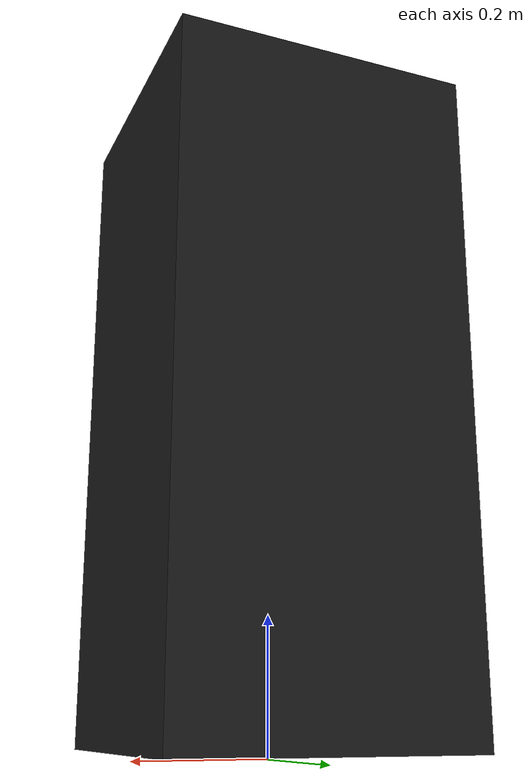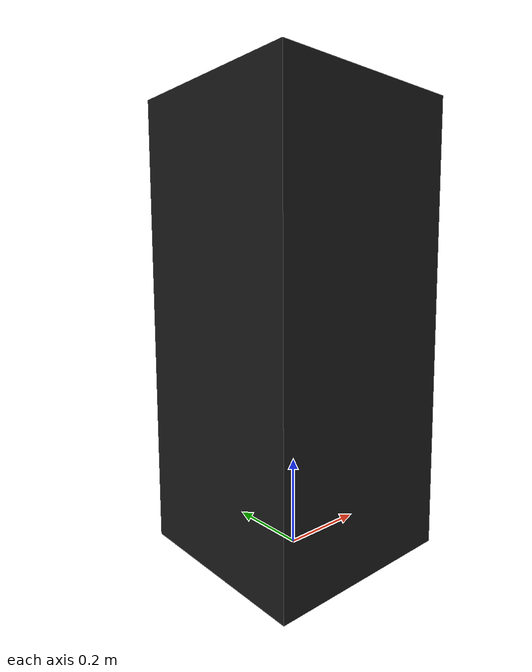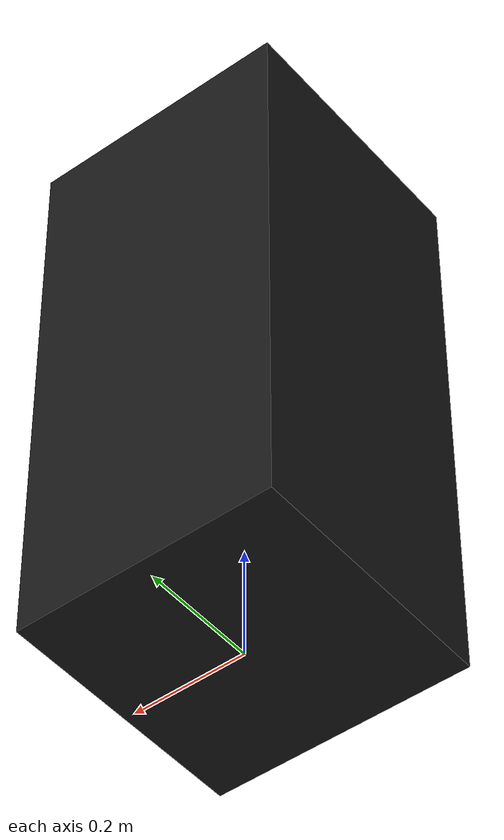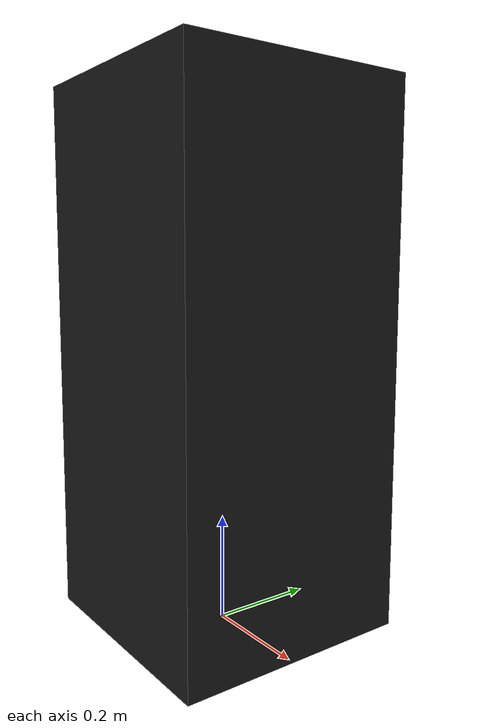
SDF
<?xml version="1.0" encoding="UTF-8"?>
<sdf version="1.4">
   <model name="avoid_goal">
      <link name="base">
         <pose>0.0 0.0 0.51 0 0 0</pose>

         <inertial>
            <mass>31</mass>
            <pose>0 0 0 0 0 0</pose>
            <inertia>
               <ixx>100</ixx>
               <ixy>0</ixy>
               <ixz>0</ixz>
               <iyy>100</iyy>
               <iyz>0</iyz>
               <izz>2.86</izz>
            </inertia>
         </inertial>

         <collision name="box_collision">
            <geometry>
               <box>
                  <size>.45 .45 1.0</size>
               </box>
            </geometry>
            <surface>
               <bounce>
                  <restitution_coefficient>0</restitution_coefficient>
               </bounce>
               <friction>
                  <ode>
                     <mu>0.1</mu>
                     <mu2>0.1</mu2>
                  </ode>
               </friction>
            </surface>
         </collision>

         <visual name="visual">
            <geometry>
               <box>
                  <size>.45 .45 1.0</size>
               </box>
            </geometry>

            <material> <!-- Wheel material -->
               <ambient>0.1 0.1 0.1 1</ambient>
               <diffuse>0.1 0.1 0.1 1</diffuse>
               <specular>0 0 0 0</specular>
               <emissive>0 0 0 1</emissive>
            </material> <!-- End wheel material -->
         </visual>

         <velocity_decay>
            <linear>0</linear>
            <angular>0</angular>
         </velocity_decay>
         <self_collide>0</self_collide>
         <gravity>1</gravity>

         <sensor name="RFsrRL" type="contact">
            <always_on>1</always_on>
            <update_rate>20</update_rate>
            <visualize>true</visualize>
            <contact>
               <collision>box_collision</collision>
            </contact>
            <plugin name="gazebo_ros_bumper_ controller" filename="libgazebo_ros_bumper.so">
               <alwaysOn>true</alwaysOn>
               <updateRate>20</updateRate>
               <bumperTopicName>bumper</bumperTopicName>
               <frameName>symbol</frameName>
            </plugin>
         </sensor>
      </link>

      <plugin name="nubot_gazebo" filename="libnubot_gazebo.so" />
   </model>
</sdf>
